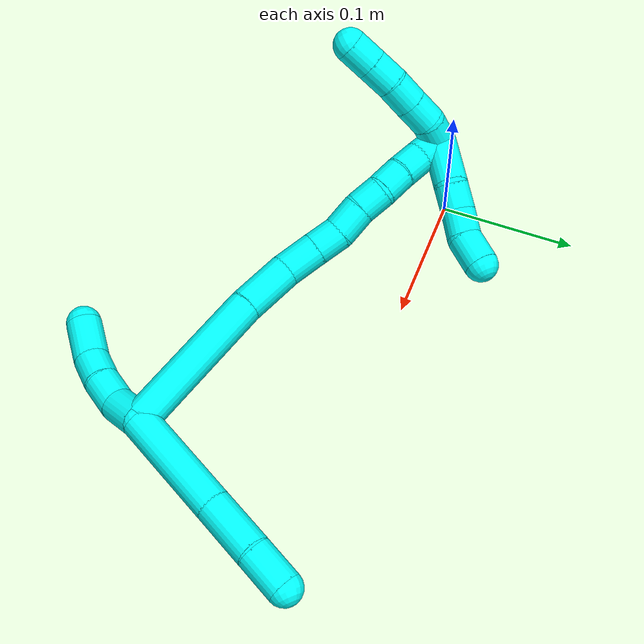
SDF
<sdf version="1.7">
 <world name="default">
  <model name="photoneo_s_sensor">
   <static>1</static>
   <pose>0 0 2 1.57079 1.57079 3.14159</pose>
   <link name="link">
    <inertial><mass>0.1</mass></inertial>
    <sensor name="sensor" type="depth">
     <update_rate>30</update_rate>
     <camera>
      <horizontal_fov>1.22</horizontal_fov>
      <image><width>1920</width><height>1200</height><format>B8G8R8</format></image>
      <clip><near>0.1</near><far>4</far></clip>
      <depth_camera><output>points</output></depth_camera>
     </camera>
     <plugin name="camera_plugin" filename="libgazebo_ros_depth_camera.so">
      <baseline>0.2</baseline>
      <alwaysOn>1</alwaysOn>
      <updateRate>0.0</updateRate>
      <cameraName>camera_ir</cameraName>
      <imageTopicName>/camera/color/image_raw</imageTopicName>
      <cameraInfoTopicName>/camera/color/camera_info</cameraInfoTopicName>
      <depthImageTopicName>/camera/depth/image_raw</depthImageTopicName>
      <depthImageCameraInfoTopicName>/camera/depth/camera_info</depthImageCameraInfoTopicName>
      <pointCloudTopicName>/camera/depth/points</pointCloudTopicName>
      <frameName>fr_optical</frameName>
      <pointCloudCutoff>0.1</pointCloudCutoff>
      <pointCloudCutoffMax>2.0</pointCloudCutoffMax>
      <distortionK1>0</distortionK1>
      <distortionK2>0</distortionK2>
      <distortionK3>0</distortionK3>
      <distortionT1>0</distortionT1>
      <distortionT2>0</distortionT2>
      <CxPrime>0</CxPrime>
      <Cx>0</Cx>
      <Cy>0</Cy>
      <focalLength>0</focalLength>
      <hackBaseline>0</hackBaseline>
     </plugin>
    </sensor>
   </link>
  </model>
  <model name="bin">
   <static>1</static>
   <link name="bottom">
    <collision name="collision-bottom">
     <pose>0 0 -0.01 0 -0 0</pose>
     <geometry><box><size>0.8 0.6 0.02</size></box></geometry>
     <surface>
      <friction><ode><mu>100</mu><mu2>100</mu2></ode></friction>
      <contact><collide_bitmask>65535</collide_bitmask></contact>
     </surface>
    </collision>
   </link>
   <link name="west_wall">
    <collision name="collision-west_wall">
     <pose>-0.41 0 0.1 0 -0 0</pose>
     <geometry><box><size>0.02 0.6 0.2</size></box></geometry>
     <surface>
      <friction><ode><mu>100</mu><mu2>100</mu2></ode></friction>
      <contact><collide_bitmask>65535</collide_bitmask></contact>
     </surface>
    </collision>
   </link>
   <link name="east_wall">
    <collision name="collision-east_wall">
     <pose>0.41 0 0.1 0 -0 0</pose>
     <geometry><box><size>0.02 0.6 0.2</size></box></geometry>
     <surface>
      <friction><ode><mu>100</mu><mu2>100</mu2></ode></friction>
      <contact><collide_bitmask>65535</collide_bitmask></contact>
     </surface>
    </collision>
   </link>
   <link name="south_wall">
    <collision name="collision-south_wall">
     <pose>0 -0.31 0.1 0 -0 0</pose>
     <geometry><box><size>0.8 0.02 0.2</size></box></geometry>
     <surface>
      <friction><ode><mu>100</mu><mu2>100</mu2></ode></friction>
      <contact><collide_bitmask>65535</collide_bitmask></contact>
     </surface>
    </collision>
   </link>
   <link name="north_wall">
    <collision name="collision-north_wall">
     <pose>0 0.31 0.1 0 -0 0</pose>
     <geometry><box><size>0.8 0.02 0.2</size></box></geometry>
     <surface>
      <friction><ode><mu>100</mu><mu2>100</mu2></ode></friction>
      <contact><collide_bitmask>65535</collide_bitmask></contact>
     </surface>
    </collision>
   </link>
  </model>
  <model name="3">
   <static>0</static>
   <link name="3">
    <collision name="collision-cylinder-e_1_2_8">
     <pose>-0.01226 -0.00419 -0.03676 3.0281 -0.319987 -2.46465</pose>
     <geometry><cylinder><radius>0.0125</radius><length>0.077952</length></cylinder></geometry>
     <surface>
      <friction><ode><mu>1.16</mu><mu2>1.16</mu2><slip1>0</slip1><slip2>0</slip2></ode></friction>
      <contact><ode><kp>1e+06</kp><kd>1</kd><max_vel>0</max_vel><min_depth>0.001</min_depth></ode></contact>
     </surface>
    </collision>
    <visual name="visual-cylinder-e_1_2_8">
     <pose>-0.01226 -0.00419 -0.03676 3.0281 -0.319987 -2.46465</pose>
     <geometry><cylinder><radius>0.0125</radius><length>0.077952</length></cylinder></geometry>
     <material><ambient>0.003922 1 0.996078 1</ambient></material>
    </visual>
    <collision name="collision-cylinder-e_2_8_9">
     <pose>-0.03248 -0.00863 -0.092896 3.12866 -0.389759 -3.0761</pose>
     <geometry><cylinder><radius>0.0125</radius><length>0.0419</length></cylinder></geometry>
     <surface>
      <friction><ode><mu>1.16</mu><mu2>1.16</mu2><slip1>0</slip1><slip2>0</slip2></ode></friction>
      <contact><ode><kp>1e+06</kp><kd>1</kd><max_vel>0</max_vel><min_depth>0.001</min_depth></ode></contact>
     </surface>
    </collision>
    <visual name="visual-cylinder-e_2_8_9">
     <pose>-0.03248 -0.00863 -0.092896 3.12866 -0.389759 -3.0761</pose>
     <geometry><cylinder><radius>0.0125</radius><length>0.0419</length></cylinder></geometry>
     <material><ambient>0.003922 1 0.996078 1</ambient></material>
    </visual>
    <collision name="collision-cylinder-e_3_9_6">
     <pose>-0.044894 -0.010807 -0.126545 3.00746 -0.299913 -2.30499</pose>
     <geometry><cylinder><radius>0.0125</radius><length>0.030148</length></cylinder></geometry>
     <surface>
      <friction><ode><mu>1.16</mu><mu2>1.16</mu2><slip1>0</slip1><slip2>0</slip2></ode></friction>
      <contact><ode><kp>1e+06</kp><kd>1</kd><max_vel>0</max_vel><min_depth>0.001</min_depth></ode></contact>
     </surface>
    </collision>
    <visual name="visual-cylinder-e_3_9_6">
     <pose>-0.044894 -0.010807 -0.126545 3.00746 -0.299913 -2.30499</pose>
     <geometry><cylinder><radius>0.0125</radius><length>0.030148</length></cylinder></geometry>
     <material><ambient>0.003922 1 0.996078 1</ambient></material>
    </visual>
    <collision name="collision-cylinder-e_1_2_10">
     <pose>0.008108 -0.002126 0.009667 0.216462 0.686324 0.077606</pose>
     <geometry><cylinder><radius>0.0125</radius><length>0.02559</length></cylinder></geometry>
     <surface>
      <friction><ode><mu>1.16</mu><mu2>1.16</mu2><slip1>0</slip1><slip2>0</slip2></ode></friction>
      <contact><ode><kp>1e+06</kp><kd>1</kd><max_vel>0</max_vel><min_depth>0.001</min_depth></ode></contact>
     </surface>
    </collision>
    <visual name="visual-cylinder-e_1_2_10">
     <pose>0.008108 -0.002126 0.009667 0.216462 0.686324 0.077606</pose>
     <geometry><cylinder><radius>0.0125</radius><length>0.02559</length></cylinder></geometry>
     <material><ambient>0.003922 1 0.996078 1</ambient></material>
    </visual>
    <collision name="collision-cylinder-e_2_10_11">
     <pose>0.020254 -0.005364 0.029926 0.104639 0.362374 0.019186</pose>
     <geometry><cylinder><radius>0.0125</radius><length>0.02278</length></cylinder></geometry>
     <surface>
      <friction><ode><mu>1.16</mu><mu2>1.16</mu2><slip1>0</slip1><slip2>0</slip2></ode></friction>
      <contact><ode><kp>1e+06</kp><kd>1</kd><max_vel>0</max_vel><min_depth>0.001</min_depth></ode></contact>
     </surface>
    </collision>
    <visual name="visual-cylinder-e_2_10_11">
     <pose>0.020254 -0.005364 0.029926 0.104639 0.362374 0.019186</pose>
     <geometry><cylinder><radius>0.0125</radius><length>0.02278</length></cylinder></geometry>
     <material><ambient>0.003922 1 0.996078 1</ambient></material>
    </visual>
    <collision name="collision-cylinder-e_3_11_12">
     <pose>0.027657 -0.009312 0.050469 0.277587 0.314473 0.044288</pose>
     <geometry><cylinder><radius>0.0125</radius><length>0.02176</length></cylinder></geometry>
     <surface>
      <friction><ode><mu>1.16</mu><mu2>1.16</mu2><slip1>0</slip1><slip2>0</slip2></ode></friction>
      <contact><ode><kp>1e+06</kp><kd>1</kd><max_vel>0</max_vel><min_depth>0.001</min_depth></ode></contact>
     </surface>
    </collision>
    <visual name="visual-cylinder-e_3_11_12">
     <pose>0.027657 -0.009312 0.050469 0.277587 0.314473 0.044288</pose>
     <geometry><cylinder><radius>0.0125</radius><length>0.02176</length></cylinder></geometry>
     <material><ambient>0.003922 1 0.996078 1</ambient></material>
    </visual>
    <collision name="collision-cylinder-e_4_12_5">
     <pose>0.031559 -0.015668 0.074923 0.238135 0.035927 0.004299</pose>
     <geometry><cylinder><radius>0.0125</radius><length>0.029869</length></cylinder></geometry>
     <surface>
      <friction><ode><mu>1.16</mu><mu2>1.16</mu2><slip1>0</slip1><slip2>0</slip2></ode></friction>
      <contact><ode><kp>1e+06</kp><kd>1</kd><max_vel>0</max_vel><min_depth>0.001</min_depth></ode></contact>
     </surface>
    </collision>
    <visual name="visual-cylinder-e_4_12_5">
     <pose>0.031559 -0.015668 0.074923 0.238135 0.035927 0.004299</pose>
     <geometry><cylinder><radius>0.0125</radius><length>0.029869</length></cylinder></geometry>
     <material><ambient>0.003922 1 0.996078 1</ambient></material>
    </visual>
    <collision name="collision-cylinder-e_1_2_13">
     <pose>-0.031169 -0.03731 0.025412 0.972854 -0.604294 -0.326711</pose>
     <geometry><cylinder><radius>0.0125</radius><length>0.109714</length></cylinder></geometry>
     <surface>
      <friction><ode><mu>1.16</mu><mu2>1.16</mu2><slip1>0</slip1><slip2>0</slip2></ode></friction>
      <contact><ode><kp>1e+06</kp><kd>1</kd><max_vel>0</max_vel><min_depth>0.001</min_depth></ode></contact>
     </surface>
    </collision>
    <visual name="visual-cylinder-e_1_2_13">
     <pose>-0.031169 -0.03731 0.025412 0.972854 -0.604294 -0.326711</pose>
     <geometry><cylinder><radius>0.0125</radius><length>0.109714</length></cylinder></geometry>
     <material><ambient>0.003922 1 0.996078 1</ambient></material>
    </visual>
    <collision name="collision-cylinder-e_2_13_14">
     <pose>-0.073909 -0.089037 0.058574 1.07761 -0.615391 -0.375477</pose>
     <geometry><cylinder><radius>0.0125</radius><length>0.040092</length></cylinder></geometry>
     <surface>
      <friction><ode><mu>1.16</mu><mu2>1.16</mu2><slip1>0</slip1><slip2>0</slip2></ode></friction>
      <contact><ode><kp>1e+06</kp><kd>1</kd><max_vel>0</max_vel><min_depth>0.001</min_depth></ode></contact>
     </surface>
    </collision>
    <visual name="visual-cylinder-e_2_13_14">
     <pose>-0.073909 -0.089037 0.058574 1.07761 -0.615391 -0.375477</pose>
     <geometry><cylinder><radius>0.0125</radius><length>0.040092</length></cylinder></geometry>
     <material><ambient>0.003922 1 0.996078 1</ambient></material>
    </visual>
    <collision name="collision-cylinder-e_3_14_15">
     <pose>-0.095979 -0.111239 0.069454 1.18844 -0.89654 -0.628377</pose>
     <geometry><cylinder><radius>0.0125</radius><length>0.026877</length></cylinder></geometry>
     <surface>
      <friction><ode><mu>1.16</mu><mu2>1.16</mu2><slip1>0</slip1><slip2>0</slip2></ode></friction>
      <contact><ode><kp>1e+06</kp><kd>1</kd><max_vel>0</max_vel><min_depth>0.001</min_depth></ode></contact>
     </surface>
    </collision>
    <visual name="visual-cylinder-e_3_14_15">
     <pose>-0.095979 -0.111239 0.069454 1.18844 -0.89654 -0.628377</pose>
     <geometry><cylinder><radius>0.0125</radius><length>0.026877</length></cylinder></geometry>
     <material><ambient>0.003922 1 0.996078 1</ambient></material>
    </visual>
    <collision name="collision-cylinder-e_4_15_16">
     <pose>-0.114712 -0.124795 0.074753 1.21131 -0.928098 -0.667255</pose>
     <geometry><cylinder><radius>0.0125</radius><length>0.020576</length></cylinder></geometry>
     <surface>
      <friction><ode><mu>1.16</mu><mu2>1.16</mu2><slip1>0</slip1><slip2>0</slip2></ode></friction>
      <contact><ode><kp>1e+06</kp><kd>1</kd><max_vel>0</max_vel><min_depth>0.001</min_depth></ode></contact>
     </surface>
    </collision>
    <visual name="visual-cylinder-e_4_15_16">
     <pose>-0.114712 -0.124795 0.074753 1.21131 -0.928098 -0.667255</pose>
     <geometry><cylinder><radius>0.0125</radius><length>0.020576</length></cylinder></geometry>
     <material><ambient>0.003922 1 0.996078 1</ambient></material>
    </visual>
    <collision name="collision-cylinder-e_5_16_17">
     <pose>-0.132313 -0.134976 0.081518 0.764722 -0.973644 -0.419469</pose>
     <geometry><cylinder><radius>0.0125</radius><length>0.022651</length></cylinder></geometry>
     <surface>
      <friction><ode><mu>1.16</mu><mu2>1.16</mu2><slip1>0</slip1><slip2>0</slip2></ode></friction>
      <contact><ode><kp>1e+06</kp><kd>1</kd><max_vel>0</max_vel><min_depth>0.001</min_depth></ode></contact>
     </surface>
    </collision>
    <visual name="visual-cylinder-e_5_16_17">
     <pose>-0.132313 -0.134976 0.081518 0.764722 -0.973644 -0.419469</pose>
     <geometry><cylinder><radius>0.0125</radius><length>0.022651</length></cylinder></geometry>
     <material><ambient>0.003922 1 0.996078 1</ambient></material>
    </visual>
    <collision name="collision-cylinder-e_6_17_18">
     <pose>-0.150023 -0.144283 0.088731 1.07991 -0.983487 -0.621292</pose>
     <geometry><cylinder><radius>0.0125</radius><length>0.020046</length></cylinder></geometry>
     <surface>
      <friction><ode><mu>1.16</mu><mu2>1.16</mu2><slip1>0</slip1><slip2>0</slip2></ode></friction>
      <contact><ode><kp>1e+06</kp><kd>1</kd><max_vel>0</max_vel><min_depth>0.001</min_depth></ode></contact>
     </surface>
    </collision>
    <visual name="visual-cylinder-e_6_17_18">
     <pose>-0.150023 -0.144283 0.088731 1.07991 -0.983487 -0.621292</pose>
     <geometry><cylinder><radius>0.0125</radius><length>0.020046</length></cylinder></geometry>
     <material><ambient>0.003922 1 0.996078 1</ambient></material>
    </visual>
    <collision name="collision-cylinder-e_7_18_19">
     <pose>-0.164972 -0.155647 0.095183 1.03564 -0.721009 -0.423081</pose>
     <geometry><cylinder><radius>0.0125</radius><length>0.020014</length></cylinder></geometry>
     <surface>
      <friction><ode><mu>1.16</mu><mu2>1.16</mu2><slip1>0</slip1><slip2>0</slip2></ode></friction>
      <contact><ode><kp>1e+06</kp><kd>1</kd><max_vel>0</max_vel><min_depth>0.001</min_depth></ode></contact>
     </surface>
    </collision>
    <visual name="visual-cylinder-e_7_18_19">
     <pose>-0.164972 -0.155647 0.095183 1.03564 -0.721009 -0.423081</pose>
     <geometry><cylinder><radius>0.0125</radius><length>0.020014</length></cylinder></geometry>
     <material><ambient>0.003922 1 0.996078 1</ambient></material>
    </visual>
    <collision name="collision-cylinder-e_8_19_20">
     <pose>-0.177441 -0.169422 0.102548 1.12068 -0.625416 -0.400281</pose>
     <geometry><cylinder><radius>0.0125</radius><length>0.020027</length></cylinder></geometry>
     <surface>
      <friction><ode><mu>1.16</mu><mu2>1.16</mu2><slip1>0</slip1><slip2>0</slip2></ode></friction>
      <contact><ode><kp>1e+06</kp><kd>1</kd><max_vel>0</max_vel><min_depth>0.001</min_depth></ode></contact>
     </surface>
    </collision>
    <visual name="visual-cylinder-e_8_19_20">
     <pose>-0.177441 -0.169422 0.102548 1.12068 -0.625416 -0.400281</pose>
     <geometry><cylinder><radius>0.0125</radius><length>0.020027</length></cylinder></geometry>
     <material><ambient>0.003922 1 0.996078 1</ambient></material>
    </visual>
    <collision name="collision-cylinder-e_9_20_1">
     <pose>-0.190278 -0.183275 0.109005 1.15047 -0.771841 -0.515163</pose>
     <geometry><cylinder><radius>0.0125</radius><length>0.020003</length></cylinder></geometry>
     <surface>
      <friction><ode><mu>1.16</mu><mu2>1.16</mu2><slip1>0</slip1><slip2>0</slip2></ode></friction>
      <contact><ode><kp>1e+06</kp><kd>1</kd><max_vel>0</max_vel><min_depth>0.001</min_depth></ode></contact>
     </surface>
    </collision>
    <visual name="visual-cylinder-e_9_20_1">
     <pose>-0.190278 -0.183275 0.109005 1.15047 -0.771841 -0.515163</pose>
     <geometry><cylinder><radius>0.0125</radius><length>0.020003</length></cylinder></geometry>
     <material><ambient>0.003922 1 0.996078 1</ambient></material>
    </visual>
    <collision name="collision-cylinder-e_1_1_21">
     <pose>-0.20034 -0.182209 0.117636 -0.927373 -0.313759 0.157866</pose>
     <geometry><cylinder><radius>0.0125</radius><length>0.02</length></cylinder></geometry>
     <surface>
      <friction><ode><mu>1.16</mu><mu2>1.16</mu2><slip1>0</slip1><slip2>0</slip2></ode></friction>
      <contact><ode><kp>1e+06</kp><kd>1</kd><max_vel>0</max_vel><min_depth>0.001</min_depth></ode></contact>
     </surface>
    </collision>
    <visual name="visual-cylinder-e_1_1_21">
     <pose>-0.20034 -0.182209 0.117636 -0.927373 -0.313759 0.157866</pose>
     <geometry><cylinder><radius>0.0125</radius><length>0.02</length></cylinder></geometry>
     <material><ambient>0.003922 1 0.996078 1</ambient></material>
    </visual>
    <collision name="collision-cylinder-e_2_21_22">
     <pose>-0.203657 -0.167535 0.130417 -0.784587 -0.023008 0.00952</pose>
     <geometry><cylinder><radius>0.0125</radius><length>0.02</length></cylinder></geometry>
     <surface>
      <friction><ode><mu>1.16</mu><mu2>1.16</mu2><slip1>0</slip1><slip2>0</slip2></ode></friction>
      <contact><ode><kp>1e+06</kp><kd>1</kd><max_vel>0</max_vel><min_depth>0.001</min_depth></ode></contact>
     </surface>
    </collision>
    <visual name="visual-cylinder-e_2_21_22">
     <pose>-0.203657 -0.167535 0.130417 -0.784587 -0.023008 0.00952</pose>
     <geometry><cylinder><radius>0.0125</radius><length>0.02</length></cylinder></geometry>
     <material><ambient>0.003922 1 0.996078 1</ambient></material>
    </visual>
    <collision name="collision-cylinder-e_3_22_23">
     <pose>-0.204277 -0.153391 0.144542 -0.787636 -0.03907 0.016236</pose>
     <geometry><cylinder><radius>0.0125</radius><length>0.02</length></cylinder></geometry>
     <surface>
      <friction><ode><mu>1.16</mu><mu2>1.16</mu2><slip1>0</slip1><slip2>0</slip2></ode></friction>
      <contact><ode><kp>1e+06</kp><kd>1</kd><max_vel>0</max_vel><min_depth>0.001</min_depth></ode></contact>
     </surface>
    </collision>
    <visual name="visual-cylinder-e_3_22_23">
     <pose>-0.204277 -0.153391 0.144542 -0.787636 -0.03907 0.016236</pose>
     <geometry><cylinder><radius>0.0125</radius><length>0.02</length></cylinder></geometry>
     <material><ambient>0.003922 1 0.996078 1</ambient></material>
    </visual>
    <collision name="collision-cylinder-e_4_23_24">
     <pose>-0.203806 -0.139864 0.159189 -0.703502 0.086343 -0.031706</pose>
     <geometry><cylinder><radius>0.0125</radius><length>0.02</length></cylinder></geometry>
     <surface>
      <friction><ode><mu>1.16</mu><mu2>1.16</mu2><slip1>0</slip1><slip2>0</slip2></ode></friction>
      <contact><ode><kp>1e+06</kp><kd>1</kd><max_vel>0</max_vel><min_depth>0.001</min_depth></ode></contact>
     </surface>
    </collision>
    <visual name="visual-cylinder-e_4_23_24">
     <pose>-0.203806 -0.139864 0.159189 -0.703502 0.086343 -0.031706</pose>
     <geometry><cylinder><radius>0.0125</radius><length>0.02</length></cylinder></geometry>
     <material><ambient>0.003922 1 0.996078 1</ambient></material>
    </visual>
    <collision name="collision-cylinder-e_5_24_4">
     <pose>-0.202028 -0.127011 0.174409 -0.69907 0.091644 -0.033425</pose>
     <geometry><cylinder><radius>0.0125</radius><length>0.02</length></cylinder></geometry>
     <surface>
      <friction><ode><mu>1.16</mu><mu2>1.16</mu2><slip1>0</slip1><slip2>0</slip2></ode></friction>
      <contact><ode><kp>1e+06</kp><kd>1</kd><max_vel>0</max_vel><min_depth>0.001</min_depth></ode></contact>
     </surface>
    </collision>
    <visual name="visual-cylinder-e_5_24_4">
     <pose>-0.202028 -0.127011 0.174409 -0.69907 0.091644 -0.033425</pose>
     <geometry><cylinder><radius>0.0125</radius><length>0.02</length></cylinder></geometry>
     <material><ambient>0.003922 1 0.996078 1</ambient></material>
    </visual>
    <collision name="collision-cylinder-e_1_1_25">
     <pose>-0.195135 -0.186979 0.094654 -2.97866 0.120424 -1.27201</pose>
     <geometry><cylinder><radius>0.0125</radius><length>0.035269</length></cylinder></geometry>
     <surface>
      <friction><ode><mu>1.16</mu><mu2>1.16</mu2><slip1>0</slip1><slip2>0</slip2></ode></friction>
      <contact><ode><kp>1e+06</kp><kd>1</kd><max_vel>0</max_vel><min_depth>0.001</min_depth></ode></contact>
     </surface>
    </collision>
    <visual name="visual-cylinder-e_1_1_25">
     <pose>-0.195135 -0.186979 0.094654 -2.97866 0.120424 -1.27201</pose>
     <geometry><cylinder><radius>0.0125</radius><length>0.035269</length></cylinder></geometry>
     <material><ambient>0.003922 1 0.996078 1</ambient></material>
    </visual>
    <collision name="collision-cylinder-e_2_25_26">
     <pose>-0.190403 -0.185144 0.067499 3.04021 0.257352 2.39425</pose>
     <geometry><cylinder><radius>0.0125</radius><length>0.02054</length></cylinder></geometry>
     <surface>
      <friction><ode><mu>1.16</mu><mu2>1.16</mu2><slip1>0</slip1><slip2>0</slip2></ode></friction>
      <contact><ode><kp>1e+06</kp><kd>1</kd><max_vel>0</max_vel><min_depth>0.001</min_depth></ode></contact>
     </surface>
    </collision>
    <visual name="visual-cylinder-e_2_25_26">
     <pose>-0.190403 -0.185144 0.067499 3.04021 0.257352 2.39425</pose>
     <geometry><cylinder><radius>0.0125</radius><length>0.02054</length></cylinder></geometry>
     <material><ambient>0.003922 1 0.996078 1</ambient></material>
    </visual>
    <collision name="collision-cylinder-e_3_26_27">
     <pose>-0.186396 -0.184061 0.047471 -2.93863 0.133671 -1.16298</pose>
     <geometry><cylinder><radius>0.0125</radius><length>0.020906</length></cylinder></geometry>
     <surface>
      <friction><ode><mu>1.16</mu><mu2>1.16</mu2><slip1>0</slip1><slip2>0</slip2></ode></friction>
      <contact><ode><kp>1e+06</kp><kd>1</kd><max_vel>0</max_vel><min_depth>0.001</min_depth></ode></contact>
     </surface>
    </collision>
    <visual name="visual-cylinder-e_3_26_27">
     <pose>-0.186396 -0.184061 0.047471 -2.93863 0.133671 -1.16298</pose>
     <geometry><cylinder><radius>0.0125</radius><length>0.020906</length></cylinder></geometry>
     <material><ambient>0.003922 1 0.996078 1</ambient></material>
    </visual>
    <collision name="collision-cylinder-e_4_27_3">
     <pose>-0.186505 -0.181495 0.025788 -3.10022 -0.129357 2.52318</pose>
     <geometry><cylinder><radius>0.0125</radius><length>0.023285</length></cylinder></geometry>
     <surface>
      <friction><ode><mu>1.16</mu><mu2>1.16</mu2><slip1>0</slip1><slip2>0</slip2></ode></friction>
      <contact><ode><kp>1e+06</kp><kd>1</kd><max_vel>0</max_vel><min_depth>0.001</min_depth></ode></contact>
     </surface>
    </collision>
    <visual name="visual-cylinder-e_4_27_3">
     <pose>-0.186505 -0.181495 0.025788 -3.10022 -0.129357 2.52318</pose>
     <geometry><cylinder><radius>0.0125</radius><length>0.023285</length></cylinder></geometry>
     <material><ambient>0.003922 1 0.996078 1</ambient></material>
    </visual>
    <collision name="collision-sphere-3">
     <pose>-0.188007 -0.181018 0.014253 0 -0 0</pose>
     <geometry><sphere><radius>0.0125</radius></sphere></geometry>
     <surface>
      <friction><ode><mu>1.16</mu><mu2>1.16</mu2><slip1>0</slip1><slip2>0</slip2></ode></friction>
      <contact><ode><kp>1e+06</kp><kd>1</kd><max_vel>0</max_vel><min_depth>0.001</min_depth></ode></contact>
     </surface>
    </collision>
    <visual name="visual-sphere-3">
     <pose>-0.188007 -0.181018 0.014253 0 -0 0</pose>
     <geometry><sphere><radius>0.0125</radius></sphere></geometry>
     <material><ambient>0.003922 1 0.996078 1</ambient></material>
    </visual>
    <collision name="collision-sphere-27">
     <pose>-0.185003 -0.181973 0.037324 0 -0 0</pose>
     <geometry><sphere><radius>0.0125</radius></sphere></geometry>
     <surface>
      <friction><ode><mu>1.16</mu><mu2>1.16</mu2><slip1>0</slip1><slip2>0</slip2></ode></friction>
      <contact><ode><kp>1e+06</kp><kd>1</kd><max_vel>0</max_vel><min_depth>0.001</min_depth></ode></contact>
     </surface>
    </collision>
    <visual name="visual-sphere-27">
     <pose>-0.185003 -0.181973 0.037324 0 -0 0</pose>
     <geometry><sphere><radius>0.0125</radius></sphere></geometry>
     <material><ambient>0.003922 1 0.996078 1</ambient></material>
    </visual>
    <collision name="collision-sphere-26">
     <pose>-0.187789 -0.186149 0.057618 0 -0 0</pose>
     <geometry><sphere><radius>0.0125</radius></sphere></geometry>
     <surface>
      <friction><ode><mu>1.16</mu><mu2>1.16</mu2><slip1>0</slip1><slip2>0</slip2></ode></friction>
      <contact><ode><kp>1e+06</kp><kd>1</kd><max_vel>0</max_vel><min_depth>0.001</min_depth></ode></contact>
     </surface>
    </collision>
    <visual name="visual-sphere-26">
     <pose>-0.187789 -0.186149 0.057618 0 -0 0</pose>
     <geometry><sphere><radius>0.0125</radius></sphere></geometry>
     <material><ambient>0.003922 1 0.996078 1</ambient></material>
    </visual>
    <collision name="collision-sphere-25">
     <pose>-0.193017 -0.184139 0.077379 0 -0 0</pose>
     <geometry><sphere><radius>0.0125</radius></sphere></geometry>
     <surface>
      <friction><ode><mu>1.16</mu><mu2>1.16</mu2><slip1>0</slip1><slip2>0</slip2></ode></friction>
      <contact><ode><kp>1e+06</kp><kd>1</kd><max_vel>0</max_vel><min_depth>0.001</min_depth></ode></contact>
     </surface>
    </collision>
    <visual name="visual-sphere-25">
     <pose>-0.193017 -0.184139 0.077379 0 -0 0</pose>
     <geometry><sphere><radius>0.0125</radius></sphere></geometry>
     <material><ambient>0.003922 1 0.996078 1</ambient></material>
    </visual>
    <collision name="collision-sphere-4">
     <pose>-0.201113 -0.120603 0.182031 0 -0 0</pose>
     <geometry><sphere><radius>0.0125</radius></sphere></geometry>
     <surface>
      <friction><ode><mu>1.16</mu><mu2>1.16</mu2><slip1>0</slip1><slip2>0</slip2></ode></friction>
      <contact><ode><kp>1e+06</kp><kd>1</kd><max_vel>0</max_vel><min_depth>0.001</min_depth></ode></contact>
     </surface>
    </collision>
    <visual name="visual-sphere-4">
     <pose>-0.201113 -0.120603 0.182031 0 -0 0</pose>
     <geometry><sphere><radius>0.0125</radius></sphere></geometry>
     <material><ambient>0.003922 1 0.996078 1</ambient></material>
    </visual>
    <collision name="collision-sphere-24">
     <pose>-0.202943 -0.133419 0.166787 0 -0 0</pose>
     <geometry><sphere><radius>0.0125</radius></sphere></geometry>
     <surface>
      <friction><ode><mu>1.16</mu><mu2>1.16</mu2><slip1>0</slip1><slip2>0</slip2></ode></friction>
      <contact><ode><kp>1e+06</kp><kd>1</kd><max_vel>0</max_vel><min_depth>0.001</min_depth></ode></contact>
     </surface>
    </collision>
    <visual name="visual-sphere-24">
     <pose>-0.202943 -0.133419 0.166787 0 -0 0</pose>
     <geometry><sphere><radius>0.0125</radius></sphere></geometry>
     <material><ambient>0.003922 1 0.996078 1</ambient></material>
    </visual>
    <collision name="collision-sphere-23">
     <pose>-0.204668 -0.146309 0.151592 0 -0 0</pose>
     <geometry><sphere><radius>0.0125</radius></sphere></geometry>
     <surface>
      <friction><ode><mu>1.16</mu><mu2>1.16</mu2><slip1>0</slip1><slip2>0</slip2></ode></friction>
      <contact><ode><kp>1e+06</kp><kd>1</kd><max_vel>0</max_vel><min_depth>0.001</min_depth></ode></contact>
     </surface>
    </collision>
    <visual name="visual-sphere-23">
     <pose>-0.204668 -0.146309 0.151592 0 -0 0</pose>
     <geometry><sphere><radius>0.0125</radius></sphere></geometry>
     <material><ambient>0.003922 1 0.996078 1</ambient></material>
    </visual>
    <collision name="collision-sphere-22">
     <pose>-0.203887 -0.160472 0.137492 0 -0 0</pose>
     <geometry><sphere><radius>0.0125</radius></sphere></geometry>
     <surface>
      <friction><ode><mu>1.16</mu><mu2>1.16</mu2><slip1>0</slip1><slip2>0</slip2></ode></friction>
      <contact><ode><kp>1e+06</kp><kd>1</kd><max_vel>0</max_vel><min_depth>0.001</min_depth></ode></contact>
     </surface>
    </collision>
    <visual name="visual-sphere-22">
     <pose>-0.203887 -0.160472 0.137492 0 -0 0</pose>
     <geometry><sphere><radius>0.0125</radius></sphere></geometry>
     <material><ambient>0.003922 1 0.996078 1</ambient></material>
    </visual>
    <collision name="collision-sphere-21">
     <pose>-0.203427 -0.174599 0.123342 0 -0 0</pose>
     <geometry><sphere><radius>0.0125</radius></sphere></geometry>
     <surface>
      <friction><ode><mu>1.16</mu><mu2>1.16</mu2><slip1>0</slip1><slip2>0</slip2></ode></friction>
      <contact><ode><kp>1e+06</kp><kd>1</kd><max_vel>0</max_vel><min_depth>0.001</min_depth></ode></contact>
     </surface>
    </collision>
    <visual name="visual-sphere-21">
     <pose>-0.203427 -0.174599 0.123342 0 -0 0</pose>
     <geometry><sphere><radius>0.0125</radius></sphere></geometry>
     <material><ambient>0.003922 1 0.996078 1</ambient></material>
    </visual>
    <collision name="collision-sphere-1">
     <pose>-0.197254 -0.189819 0.111929 0 -0 0</pose>
     <geometry><sphere><radius>0.0125</radius></sphere></geometry>
     <surface>
      <friction><ode><mu>1.16</mu><mu2>1.16</mu2><slip1>0</slip1><slip2>0</slip2></ode></friction>
      <contact><ode><kp>1e+06</kp><kd>1</kd><max_vel>0</max_vel><min_depth>0.001</min_depth></ode></contact>
     </surface>
    </collision>
    <visual name="visual-sphere-1">
     <pose>-0.197254 -0.189819 0.111929 0 -0 0</pose>
     <geometry><sphere><radius>0.0125</radius></sphere></geometry>
     <material><ambient>0.003922 1 0.996078 1</ambient></material>
    </visual>
    <collision name="collision-sphere-11">
     <pose>0.024292 -0.006477 0.040518 0 -0 0</pose>
     <geometry><sphere><radius>0.0125</radius></sphere></geometry>
     <surface>
      <friction><ode><mu>1.16</mu><mu2>1.16</mu2><slip1>0</slip1><slip2>0</slip2></ode></friction>
      <contact><ode><kp>1e+06</kp><kd>1</kd><max_vel>0</max_vel><min_depth>0.001</min_depth></ode></contact>
     </surface>
    </collision>
    <visual name="visual-sphere-11">
     <pose>0.024292 -0.006477 0.040518 0 -0 0</pose>
     <geometry><sphere><radius>0.0125</radius></sphere></geometry>
     <material><ambient>0.003922 1 0.996078 1</ambient></material>
    </visual>
    <collision name="collision-sphere-10">
     <pose>0.016217 -0.004252 0.019334 0 -0 0</pose>
     <geometry><sphere><radius>0.0125</radius></sphere></geometry>
     <surface>
      <friction><ode><mu>1.16</mu><mu2>1.16</mu2><slip1>0</slip1><slip2>0</slip2></ode></friction>
      <contact><ode><kp>1e+06</kp><kd>1</kd><max_vel>0</max_vel><min_depth>0.001</min_depth></ode></contact>
     </surface>
    </collision>
    <visual name="visual-sphere-10">
     <pose>0.016217 -0.004252 0.019334 0 -0 0</pose>
     <geometry><sphere><radius>0.0125</radius></sphere></geometry>
     <material><ambient>0.003922 1 0.996078 1</ambient></material>
    </visual>
    <collision name="collision-sphere-6">
     <pose>-0.049348 -0.012732 -0.140817 0 -0 0</pose>
     <geometry><sphere><radius>0.0125</radius></sphere></geometry>
     <surface>
      <friction><ode><mu>1.16</mu><mu2>1.16</mu2><slip1>0</slip1><slip2>0</slip2></ode></friction>
      <contact><ode><kp>1e+06</kp><kd>1</kd><max_vel>0</max_vel><min_depth>0.001</min_depth></ode></contact>
     </surface>
    </collision>
    <visual name="visual-sphere-6">
     <pose>-0.049348 -0.012732 -0.140817 0 -0 0</pose>
     <geometry><sphere><radius>0.0125</radius></sphere></geometry>
     <material><ambient>0.003922 1 0.996078 1</ambient></material>
    </visual>
    <collision name="collision-sphere-9">
     <pose>-0.040441 -0.008881 -0.112274 0 -0 0</pose>
     <geometry><sphere><radius>0.0125</radius></sphere></geometry>
     <surface>
      <friction><ode><mu>1.16</mu><mu2>1.16</mu2><slip1>0</slip1><slip2>0</slip2></ode></friction>
      <contact><ode><kp>1e+06</kp><kd>1</kd><max_vel>0</max_vel><min_depth>0.001</min_depth></ode></contact>
     </surface>
    </collision>
    <visual name="visual-sphere-9">
     <pose>-0.040441 -0.008881 -0.112274 0 -0 0</pose>
     <geometry><sphere><radius>0.0125</radius></sphere></geometry>
     <material><ambient>0.003922 1 0.996078 1</ambient></material>
    </visual>
    <collision name="collision-sphere-2">
     <geometry><sphere><radius>0.0125</radius></sphere></geometry>
     <surface>
      <friction><ode><mu>1.16</mu><mu2>1.16</mu2><slip1>0</slip1><slip2>0</slip2></ode></friction>
      <contact><ode><kp>1e+06</kp><kd>1</kd><max_vel>0</max_vel><min_depth>0.001</min_depth></ode></contact>
     </surface>
    </collision>
    <visual name="visual-sphere-2">
     <geometry><sphere><radius>0.0125</radius></sphere></geometry>
     <material><ambient>0.003922 1 0.996078 1</ambient></material>
    </visual>
    <collision name="collision-sphere-19">
     <pose>-0.171578 -0.162113 0.099016 0 -0 0</pose>
     <geometry><sphere><radius>0.0125</radius></sphere></geometry>
     <surface>
      <friction><ode><mu>1.16</mu><mu2>1.16</mu2><slip1>0</slip1><slip2>0</slip2></ode></friction>
      <contact><ode><kp>1e+06</kp><kd>1</kd><max_vel>0</max_vel><min_depth>0.001</min_depth></ode></contact>
     </surface>
    </collision>
    <visual name="visual-sphere-19">
     <pose>-0.171578 -0.162113 0.099016 0 -0 0</pose>
     <geometry><sphere><radius>0.0125</radius></sphere></geometry>
     <material><ambient>0.003922 1 0.996078 1</ambient></material>
    </visual>
    <collision name="collision-sphere-8">
     <pose>-0.02452 -0.00838 -0.073519 0 -0 0</pose>
     <geometry><sphere><radius>0.0125</radius></sphere></geometry>
     <surface>
      <friction><ode><mu>1.16</mu><mu2>1.16</mu2><slip1>0</slip1><slip2>0</slip2></ode></friction>
      <contact><ode><kp>1e+06</kp><kd>1</kd><max_vel>0</max_vel><min_depth>0.001</min_depth></ode></contact>
     </surface>
    </collision>
    <visual name="visual-sphere-8">
     <pose>-0.02452 -0.00838 -0.073519 0 -0 0</pose>
     <geometry><sphere><radius>0.0125</radius></sphere></geometry>
     <material><ambient>0.003922 1 0.996078 1</ambient></material>
    </visual>
    <collision name="collision-sphere-12">
     <pose>0.031023 -0.012147 0.060419 0 -0 0</pose>
     <geometry><sphere><radius>0.0125</radius></sphere></geometry>
     <surface>
      <friction><ode><mu>1.16</mu><mu2>1.16</mu2><slip1>0</slip1><slip2>0</slip2></ode></friction>
      <contact><ode><kp>1e+06</kp><kd>1</kd><max_vel>0</max_vel><min_depth>0.001</min_depth></ode></contact>
     </surface>
    </collision>
    <visual name="visual-sphere-12">
     <pose>0.031023 -0.012147 0.060419 0 -0 0</pose>
     <geometry><sphere><radius>0.0125</radius></sphere></geometry>
     <material><ambient>0.003922 1 0.996078 1</ambient></material>
    </visual>
    <collision name="collision-sphere-5">
     <pose>0.032096 -0.019189 0.089427 0 -0 0</pose>
     <geometry><sphere><radius>0.0125</radius></sphere></geometry>
     <surface>
      <friction><ode><mu>1.16</mu><mu2>1.16</mu2><slip1>0</slip1><slip2>0</slip2></ode></friction>
      <contact><ode><kp>1e+06</kp><kd>1</kd><max_vel>0</max_vel><min_depth>0.001</min_depth></ode></contact>
     </surface>
    </collision>
    <visual name="visual-sphere-5">
     <pose>0.032096 -0.019189 0.089427 0 -0 0</pose>
     <geometry><sphere><radius>0.0125</radius></sphere></geometry>
     <material><ambient>0.003922 1 0.996078 1</ambient></material>
    </visual>
    <collision name="collision-sphere-13">
     <pose>-0.062337 -0.074619 0.050825 0 -0 0</pose>
     <geometry><sphere><radius>0.0125</radius></sphere></geometry>
     <surface>
      <friction><ode><mu>1.16</mu><mu2>1.16</mu2><slip1>0</slip1><slip2>0</slip2></ode></friction>
      <contact><ode><kp>1e+06</kp><kd>1</kd><max_vel>0</max_vel><min_depth>0.001</min_depth></ode></contact>
     </surface>
    </collision>
    <visual name="visual-sphere-13">
     <pose>-0.062337 -0.074619 0.050825 0 -0 0</pose>
     <geometry><sphere><radius>0.0125</radius></sphere></geometry>
     <material><ambient>0.003922 1 0.996078 1</ambient></material>
    </visual>
    <collision name="collision-sphere-14">
     <pose>-0.085481 -0.103455 0.066323 0 -0 0</pose>
     <geometry><sphere><radius>0.0125</radius></sphere></geometry>
     <surface>
      <friction><ode><mu>1.16</mu><mu2>1.16</mu2><slip1>0</slip1><slip2>0</slip2></ode></friction>
      <contact><ode><kp>1e+06</kp><kd>1</kd><max_vel>0</max_vel><min_depth>0.001</min_depth></ode></contact>
     </surface>
    </collision>
    <visual name="visual-sphere-14">
     <pose>-0.085481 -0.103455 0.066323 0 -0 0</pose>
     <geometry><sphere><radius>0.0125</radius></sphere></geometry>
     <material><ambient>0.003922 1 0.996078 1</ambient></material>
    </visual>
    <collision name="collision-sphere-15">
     <pose>-0.106477 -0.119023 0.072584 0 -0 0</pose>
     <geometry><sphere><radius>0.0125</radius></sphere></geometry>
     <surface>
      <friction><ode><mu>1.16</mu><mu2>1.16</mu2><slip1>0</slip1><slip2>0</slip2></ode></friction>
      <contact><ode><kp>1e+06</kp><kd>1</kd><max_vel>0</max_vel><min_depth>0.001</min_depth></ode></contact>
     </surface>
    </collision>
    <visual name="visual-sphere-15">
     <pose>-0.106477 -0.119023 0.072584 0 -0 0</pose>
     <geometry><sphere><radius>0.0125</radius></sphere></geometry>
     <material><ambient>0.003922 1 0.996078 1</ambient></material>
    </visual>
    <collision name="collision-sphere-16">
     <pose>-0.122948 -0.130567 0.076923 0 -0 0</pose>
     <geometry><sphere><radius>0.0125</radius></sphere></geometry>
     <surface>
      <friction><ode><mu>1.16</mu><mu2>1.16</mu2><slip1>0</slip1><slip2>0</slip2></ode></friction>
      <contact><ode><kp>1e+06</kp><kd>1</kd><max_vel>0</max_vel><min_depth>0.001</min_depth></ode></contact>
     </surface>
    </collision>
    <visual name="visual-sphere-16">
     <pose>-0.122948 -0.130567 0.076923 0 -0 0</pose>
     <geometry><sphere><radius>0.0125</radius></sphere></geometry>
     <material><ambient>0.003922 1 0.996078 1</ambient></material>
    </visual>
    <collision name="collision-sphere-17">
     <pose>-0.141679 -0.139385 0.086113 0 -0 0</pose>
     <geometry><sphere><radius>0.0125</radius></sphere></geometry>
     <surface>
      <friction><ode><mu>1.16</mu><mu2>1.16</mu2><slip1>0</slip1><slip2>0</slip2></ode></friction>
      <contact><ode><kp>1e+06</kp><kd>1</kd><max_vel>0</max_vel><min_depth>0.001</min_depth></ode></contact>
     </surface>
    </collision>
    <visual name="visual-sphere-17">
     <pose>-0.141679 -0.139385 0.086113 0 -0 0</pose>
     <geometry><sphere><radius>0.0125</radius></sphere></geometry>
     <material><ambient>0.003922 1 0.996078 1</ambient></material>
    </visual>
    <collision name="collision-sphere-18">
     <pose>-0.158366 -0.149181 0.091349 0 -0 0</pose>
     <geometry><sphere><radius>0.0125</radius></sphere></geometry>
     <surface>
      <friction><ode><mu>1.16</mu><mu2>1.16</mu2><slip1>0</slip1><slip2>0</slip2></ode></friction>
      <contact><ode><kp>1e+06</kp><kd>1</kd><max_vel>0</max_vel><min_depth>0.001</min_depth></ode></contact>
     </surface>
    </collision>
    <visual name="visual-sphere-18">
     <pose>-0.158366 -0.149181 0.091349 0 -0 0</pose>
     <geometry><sphere><radius>0.0125</radius></sphere></geometry>
     <material><ambient>0.003922 1 0.996078 1</ambient></material>
    </visual>
    <collision name="collision-sphere-20">
     <pose>-0.183303 -0.176732 0.10608 0 -0 0</pose>
     <geometry><sphere><radius>0.0125</radius></sphere></geometry>
     <surface>
      <friction><ode><mu>1.16</mu><mu2>1.16</mu2><slip1>0</slip1><slip2>0</slip2></ode></friction>
      <contact><ode><kp>1e+06</kp><kd>1</kd><max_vel>0</max_vel><min_depth>0.001</min_depth></ode></contact>
     </surface>
    </collision>
    <visual name="visual-sphere-20">
     <pose>-0.183303 -0.176732 0.10608 0 -0 0</pose>
     <geometry><sphere><radius>0.0125</radius></sphere></geometry>
     <material><ambient>0.003922 1 0.996078 1</ambient></material>
    </visual>
    <inertial>
     <pose>-0.09168 -0.08677 0.043786 0 -0 0</pose>
     <mass>0.75</mass>
     <inertia><ixx>-9e-06</ixx><ixy>0</ixy><ixz>0</ixz><iyy>7.1e-05</iyy><iyz>0</iyz><izz>0.000185</izz></inertia>
    </inertial>
   </link>
   <pose>0.262083 -0.128912 0.025652 1.17893 0.766651 -1.06129</pose>
  </model>
 </world>
</sdf>
